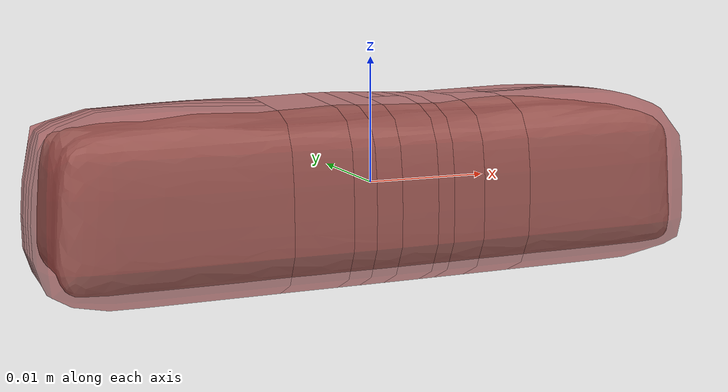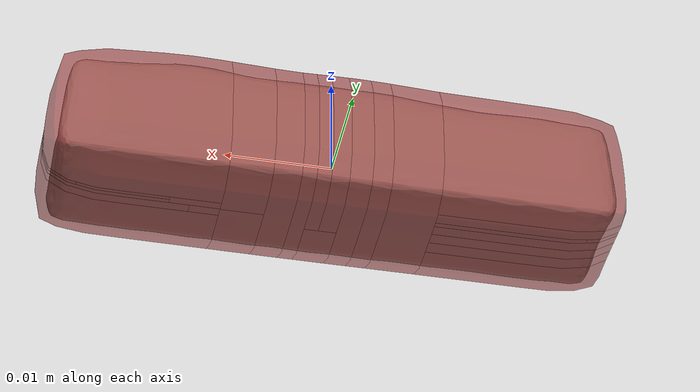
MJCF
<mujoco model="model">
  <compiler angle="radian"/>
  <asset>
    <mesh file="visual/CreamCheese005.obj" name="CreamCheese005_vis"/>
    <texture file="visual/T_BC001.png" name="CreamCheese005_material" type="2d"/>
    <material name="CreamCheese005_material" rgba="1 1 1 1.0" texture="CreamCheese005_material" shininess="0" specular="0.1"/>
    <mesh file="collision/CreamCheese005018.obj" name="CreamCheese005018_mesh"/>
    <mesh file="collision/CreamCheese005020.obj" name="CreamCheese005020_mesh"/>
    <mesh file="collision/CreamCheese005005.obj" name="CreamCheese005005_mesh"/>
    <mesh file="collision/CreamCheese005002.obj" name="CreamCheese005002_mesh"/>
    <mesh file="collision/CreamCheese005009.obj" name="CreamCheese005009_mesh"/>
    <mesh file="collision/CreamCheese005019.obj" name="CreamCheese005019_mesh"/>
    <mesh file="collision/CreamCheese005010.obj" name="CreamCheese005010_mesh"/>
    <mesh file="collision/CreamCheese005001.obj" name="CreamCheese005001_mesh"/>
    <mesh file="collision/CreamCheese005026.obj" name="CreamCheese005026_mesh"/>
    <mesh file="collision/CreamCheese005024.obj" name="CreamCheese005024_mesh"/>
    <mesh file="collision/CreamCheese005012.obj" name="CreamCheese005012_mesh"/>
    <mesh file="collision/CreamCheese005023.obj" name="CreamCheese005023_mesh"/>
    <mesh file="collision/CreamCheese005015.obj" name="CreamCheese005015_mesh"/>
    <mesh file="collision/CreamCheese005014.obj" name="CreamCheese005014_mesh"/>
    <mesh file="collision/CreamCheese005006.obj" name="CreamCheese005006_mesh"/>
    <mesh file="collision/CreamCheese005022.obj" name="CreamCheese005022_mesh"/>
    <mesh file="collision/CreamCheese005011.obj" name="CreamCheese005011_mesh"/>
    <mesh file="collision/CreamCheese005017.obj" name="CreamCheese005017_mesh"/>
    <mesh file="collision/CreamCheese005004.obj" name="CreamCheese005004_mesh"/>
    <mesh file="collision/CreamCheese005003.obj" name="CreamCheese005003_mesh"/>
    <mesh file="collision/CreamCheese005025.obj" name="CreamCheese005025_mesh"/>
    <mesh file="collision/CreamCheese005028.obj" name="CreamCheese005028_mesh"/>
    <mesh file="collision/CreamCheese005007.obj" name="CreamCheese005007_mesh"/>
    <mesh file="collision/CreamCheese005021.obj" name="CreamCheese005021_mesh"/>
    <mesh file="collision/CreamCheese005013.obj" name="CreamCheese005013_mesh"/>
    <mesh file="collision/CreamCheese005016.obj" name="CreamCheese005016_mesh"/>
    <mesh file="collision/CreamCheese005008.obj" name="CreamCheese005008_mesh"/>
    <mesh file="collision/CreamCheese005027.obj" name="CreamCheese005027_mesh"/>
  </asset>
  <default>
    <default class="visual">
      <geom conaffinity="0" contype="0" group="1" type="mesh"/>
    </default>
    <default class="collision">
      <geom group="0" rgba="0.5 0 0 0.5"/>
    </default>
    <default class="spawn">
      <geom group="0" rgba="1 1 1 0.5" contype="0" conaffinity="0"/>
      <site group="0" rgba="1 1 1 0.5"/>
    </default>
    <default class="region">
      <geom group="1" conaffinity="0" contype="0" rgba="0 1 0 0" mass="0"/>
    </default>
  </default>
  <worldbody>
    <body>
      <body name="object">
        <geom mesh="CreamCheese005_vis" type="mesh" solimp="0.998 0.998 0.001" solref="0.001 1" density="100" friction="0.95 0.3 0.1" class="visual" material="CreamCheese005_material"/>
        <geom mesh="CreamCheese005018_mesh" type="mesh" class="collision"/>
        <geom mesh="CreamCheese005020_mesh" type="mesh" class="collision"/>
        <geom mesh="CreamCheese005005_mesh" type="mesh" class="collision"/>
        <geom mesh="CreamCheese005002_mesh" type="mesh" class="collision"/>
        <geom mesh="CreamCheese005009_mesh" type="mesh" class="collision"/>
        <geom mesh="CreamCheese005019_mesh" type="mesh" class="collision"/>
        <geom mesh="CreamCheese005010_mesh" type="mesh" class="collision"/>
        <geom mesh="CreamCheese005001_mesh" type="mesh" class="collision"/>
        <geom mesh="CreamCheese005026_mesh" type="mesh" class="collision"/>
        <geom mesh="CreamCheese005024_mesh" type="mesh" class="collision"/>
        <geom mesh="CreamCheese005012_mesh" type="mesh" class="collision"/>
        <geom mesh="CreamCheese005023_mesh" type="mesh" class="collision"/>
        <geom mesh="CreamCheese005015_mesh" type="mesh" class="collision"/>
        <geom mesh="CreamCheese005014_mesh" type="mesh" class="collision"/>
        <geom mesh="CreamCheese005006_mesh" type="mesh" class="collision"/>
        <geom mesh="CreamCheese005022_mesh" type="mesh" class="collision"/>
        <geom mesh="CreamCheese005011_mesh" type="mesh" class="collision"/>
        <geom mesh="CreamCheese005017_mesh" type="mesh" class="collision"/>
        <geom mesh="CreamCheese005004_mesh" type="mesh" class="collision"/>
        <geom mesh="CreamCheese005003_mesh" type="mesh" class="collision"/>
        <geom mesh="CreamCheese005025_mesh" type="mesh" class="collision"/>
        <geom mesh="CreamCheese005028_mesh" type="mesh" class="collision"/>
        <geom mesh="CreamCheese005007_mesh" type="mesh" class="collision"/>
        <geom mesh="CreamCheese005021_mesh" type="mesh" class="collision"/>
        <geom mesh="CreamCheese005013_mesh" type="mesh" class="collision"/>
        <geom mesh="CreamCheese005016_mesh" type="mesh" class="collision"/>
        <geom mesh="CreamCheese005008_mesh" type="mesh" class="collision"/>
        <geom mesh="CreamCheese005027_mesh" type="mesh" class="collision"/>
        <geom class="region" name="reg_bbox" type="box" pos="1.6119999999999676e-05 -1.0505000000000063e-05 -0.00017513499999999987" size="0.026766810000000002 0.007371335 0.007233425"/>
      </body>
    </body>
  </worldbody>
  <actuator/>
</mujoco>
